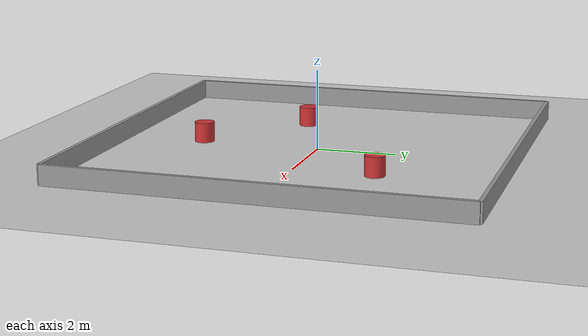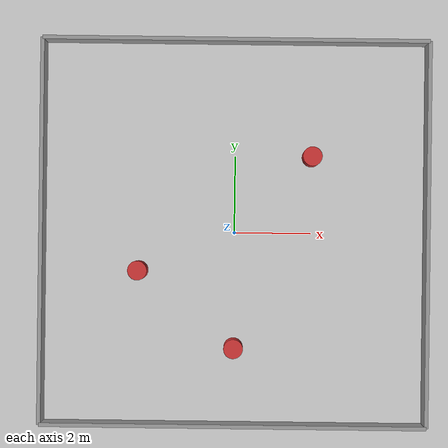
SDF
<?xml version="1.0" ?>
<sdf version="1.9">
  <world name="coverage_arena">
    <physics name="1ms" type="ignored">
        <max_step_size>0.001</max_step_size>
        <real_time_factor>1.0</real_time_factor>
    </physics>

    <plugin
      filename="gz-sim-physics-system"
      name="gz::sim::systems::Physics">
    </plugin>

    <plugin
      filename="gz-sim-user-commands-system"
      name="gz::sim::systems::UserCommands">
    </plugin>

    <plugin
      filename="gz-sim-scene-broadcaster-system"
      name="gz::sim::systems::SceneBroadcaster">
    </plugin>

    <plugin
      filename="gz-sim-sensors-system"
      name="gz::sim::systems::Sensors">
      <render_engine>ogre2</render_engine>
    </plugin>

    <plugin
      filename="gz-sim-contact-system"
      name="gz::sim::systems::Contact">
    </plugin>

    <light type="directional" name="sun">
      <cast_shadows>true</cast_shadows>
      <pose>0 0 10 0 0 0</pose>
      <diffuse>0.8 0.8 0.8 1</diffuse>
      <specular>0.2 0.2 0.2 1</specular>
      <direction>-0.5 0.1 -0.9</direction>
    </light>

    <model name="ground_plane">
      <static>true</static>
      <link name="link">
        <collision name="collision">
          <geometry>
            <plane>
              <normal>0 0 1</normal>
              <size>10 10</size>
            </plane>
          </geometry>
        </collision>
        <visual name="visual">
          <geometry>
            <plane>
              <normal>0 0 1</normal>
              <size>10 10</size>
            </plane>
          </geometry>
          <material>
            <ambient>0.8 0.8 0.8 1</ambient>
            <diffuse>0.8 0.8 0.8 1</diffuse>
          </material>
        </visual>
      </link>
    </model>

    <model name="wall_north">
      <static>true</static>
      <pose>0 5 0.25 0 0 0</pose>
      <link name="link">
        <collision name="collision">
          <geometry>
            <box><size>10 0.1 0.5</size></box>
          </geometry>
        </collision>
        <visual name="visual">
          <geometry>
            <box><size>10 0.1 0.5</size></box>
          </geometry>
          <material>
            <ambient>0.6 0.6 0.6 1</ambient>
            <diffuse>0.6 0.6 0.6 1</diffuse>
          </material>
        </visual>
      </link>
    </model>

    <model name="wall_south">
      <static>true</static>
      <pose>0 -5 0.25 0 0 0</pose>
      <link name="link">
        <collision name="collision">
          <geometry><box><size>10 0.1 0.5</size></box></geometry>
        </collision>
        <visual name="visual">
          <geometry><box><size>10 0.1 0.5</size></box></geometry>
          <material>
            <ambient>0.6 0.6 0.6 1</ambient>
            <diffuse>0.6 0.6 0.6 1</diffuse>
          </material>
        </visual>
      </link>
    </model>

    <model name="wall_east">
      <static>true</static>
      <pose>5 0 0.25 0 0 1.5708</pose>
      <link name="link">
        <collision name="collision">
          <geometry><box><size>10 0.1 0.5</size></box></geometry>
        </collision>
        <visual name="visual">
          <geometry><box><size>10 0.1 0.5</size></box></geometry>
          <material>
            <ambient>0.6 0.6 0.6 1</ambient>
            <diffuse>0.6 0.6 0.6 1</diffuse>
          </material>
        </visual>
      </link>
    </model>

    <model name="wall_west">
      <static>true</static>
      <pose>-5 0 0.25 0 0 1.5708</pose>
      <link name="link">
        <collision name="collision">
          <geometry><box><size>10 0.1 0.5</size></box></geometry>
        </collision>
        <visual name="visual">
          <geometry><box><size>10 0.1 0.5</size></box></geometry>
          <material>
            <ambient>0.6 0.6 0.6 1</ambient>
            <diffuse>0.6 0.6 0.6 1</diffuse>
          </material>
        </visual>
      </link>
    </model>

    <model name="obstacle_1">
      <static>true</static>
      <pose>2 2 0.25 0 0 0</pose>
      <link name="link">
        <collision name="collision">
          <geometry>
            <cylinder><radius>0.25</radius><length>0.5</length></cylinder>
          </geometry>
        </collision>
        <visual name="visual">
          <geometry>
            <cylinder><radius>0.25</radius><length>0.5</length></cylinder>
          </geometry>
          <material>
            <ambient>0.8 0.2 0.2 1</ambient>
            <diffuse>0.8 0.2 0.2 1</diffuse>
          </material>
        </visual>
      </link>
    </model>

    <model name="obstacle_2">
      <static>true</static>
      <pose>-2.5 -1 0.25 0 0 0</pose>
      <link name="link">
        <collision name="collision">
          <geometry>
            <cylinder><radius>0.25</radius><length>0.5</length></cylinder>
          </geometry>
        </collision>
        <visual name="visual">
          <geometry>
            <cylinder><radius>0.25</radius><length>0.5</length></cylinder>
          </geometry>
          <material>
            <ambient>0.8 0.2 0.2 1</ambient>
            <diffuse>0.8 0.2 0.2 1</diffuse>
          </material>
        </visual>
      </link>
    </model>

    <model name="obstacle_3">
      <static>true</static>
      <pose>0 -3 0.25 0 0 0</pose>
      <link name="link">
        <collision name="collision">
          <geometry>
            <cylinder><radius>0.25</radius><length>0.5</length></cylinder>
          </geometry>
        </collision>
        <visual name="visual">
          <geometry>
            <cylinder><radius>0.25</radius><length>0.5</length></cylinder>
          </geometry>
          <material>
            <ambient>0.8 0.2 0.2 1</ambient>
            <diffuse>0.8 0.2 0.2 1</diffuse>
          </material>
        </visual>
      </link>
    </model>
  </world>
</sdf>
